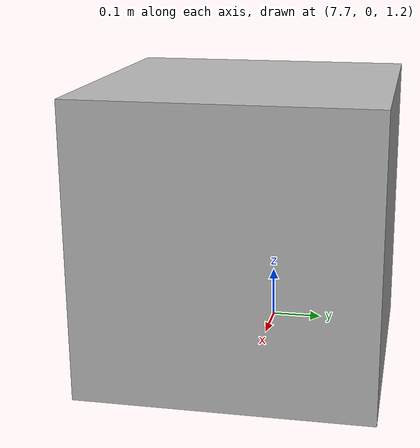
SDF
<?xml version="1.0" ?>
<sdf version="1.4">
  <world name="default">
    <include>
      <uri>model://ground_plane</uri>
    </include>
    <include>
      <uri>model://sun</uri>
    </include>
    <include>
      <uri>model://april_tag</uri>
	<pose>8 0 1.5 1.57 0 1.57</pose>
    </include>

    <!-- Only one ROS interface plugin is required per world, as any other plugin can connect a Gazebo
         topic to a ROS topic (or vise versa). -->
    <plugin name="ros_interface_plugin" filename="librotors_gazebo_ros_interface_plugin.so"/>

    <spherical_coordinates>
      <surface_model>EARTH_WGS84</surface_model>
      <latitude_deg>47.3667</latitude_deg>
      <longitude_deg>8.5500</longitude_deg>
      <elevation>500.0</elevation>
      <heading_deg>0</heading_deg>
    </spherical_coordinates>
    <physics type='ode'>
      <ode>
        <solver>
          <type>quick</type>
          <iters>1000</iters>
          <sor>1.3</sor>
        </solver>
        <constraints>
          <cfm>0</cfm>
          <erp>0.2</erp>
          <contact_max_correcting_vel>100</contact_max_correcting_vel>
          <contact_surface_layer>0.001</contact_surface_layer>
        </constraints>
      </ode>
      <max_step_size>0.01</max_step_size>
      <real_time_factor>1</real_time_factor>
      <real_time_update_rate>100</real_time_update_rate>
      <gravity>0 0 -9.8</gravity>
    </physics>
  </world>
</sdf>

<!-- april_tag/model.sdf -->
<sdf version='1.6'>
  <model name='april_tag'>
    <link name='main'>
    <pose frame=''>0 0 0 0 0 0</pose>
      <visual name='main_Visual'>
        <geometry>
          <box>
          <size>0.5 0.5 0.5</size>
          </box>
        </geometry>
           <material>
          <script>
            <uri>model://april_tag/materials/scripts</uri>
            <uri>model://april_tag/materials/textures</uri>
            <name>april_tag</name>
          </script>
        </material>
      </visual>
     </link>
    <static>1</static>
  </model>
</sdf>
